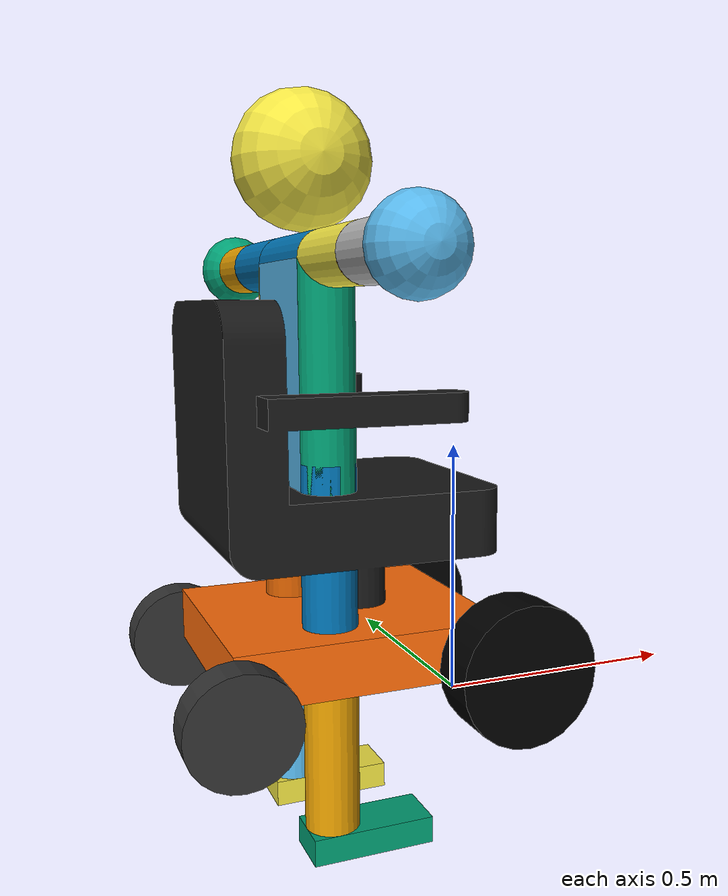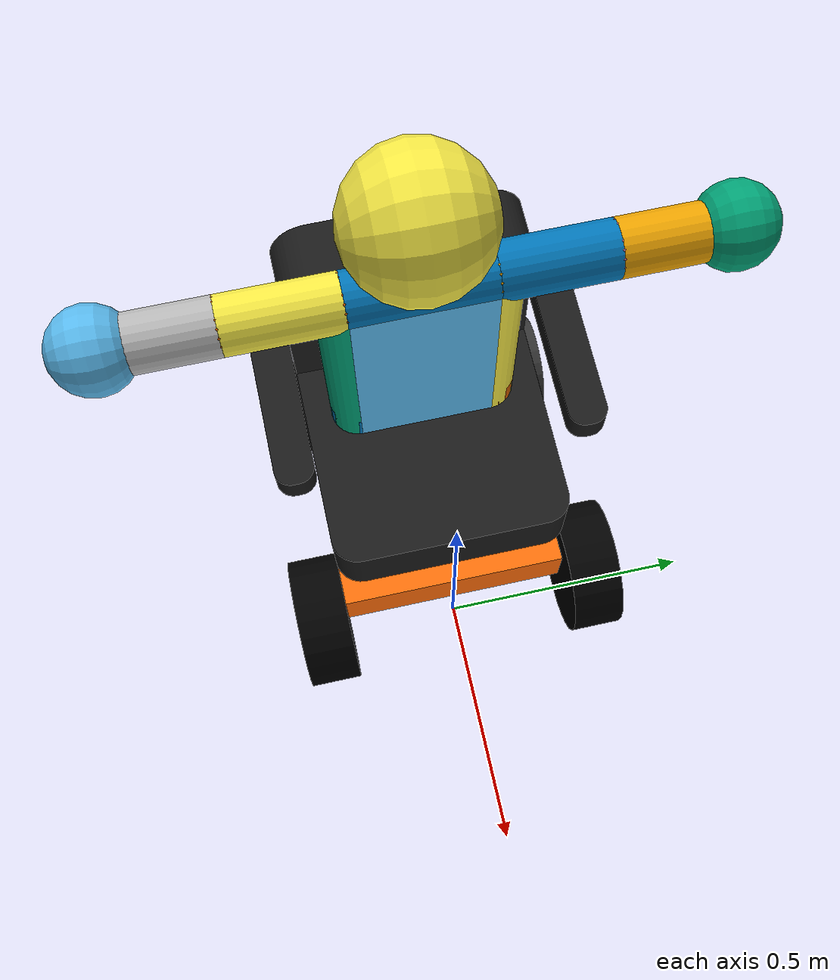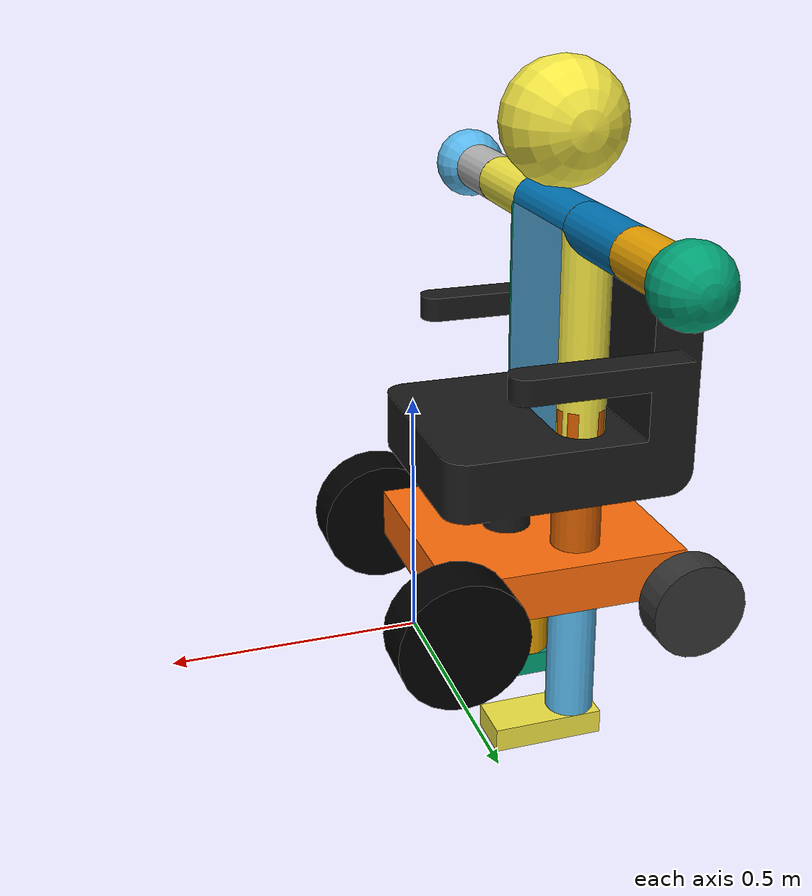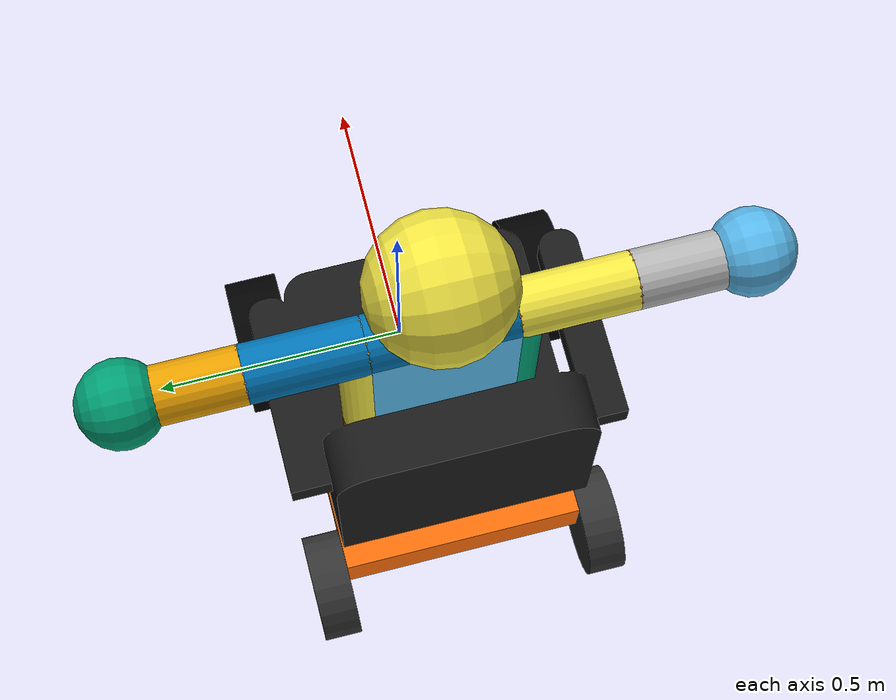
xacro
<?xml version="1.0"?>
<robot name="human_wc" xmlns:xacro="http://www.ros.org/wiki/xacro">

  <xacro:include filename="$(find model_human_skeleton)/urdf/simple_human.xacro"/>
  <xacro:include filename="$(find model_scwheelchair)/urdf/model_scwheelchair.xacro"/>

  <joint name="human_seat_joint" type="fixed">
    <origin xyz="-0.1 0 0.32" rpy="0 0 0"/>
    <parent link="seat_link"/>
    <child link="human_base_link"/>
  </joint>

  <link name="viewer_link"/>
  <joint name="head_viewer_joint" type="fixed">
    <origin xyz="0 ${head_radius} 0" rpy="1.57 0 1.57"/>
    <parent link="head_link"/>
    <child link="viewer_link"/>
  </joint>

  <!-- camera -->
  <gazebo reference="viewer_link">
    <sensor type="camera" name="camera1">
      <update_rate>30.0</update_rate>
      <camera name="head">
        <horizontal_fov>1.5707</horizontal_fov>
        <image>
          <width>960</width>
          <height>540</height>
          <format>R8G8B8</format>
        </image>
        <clip>
          <near>0.02</near>
          <far>300</far>
        </clip>
        <noise>
          <type>gaussian</type>
          <!-- Noise is sampled independently per pixel on each frame.
               That pixel's noise value is added to each of its color
               channels, which at that point lie in the range [0,1]. -->
          <mean>0.0</mean>
          <stddev>0.007</stddev>
        </noise>
      </camera>
      <plugin name="camera_controller" filename="libgazebo_ros_camera.so">
        <alwaysOn>true</alwaysOn>
        <updateRate>0.0</updateRate>
        <cameraName>firstpersonview</cameraName>
        <imageTopicName>image_raw</imageTopicName>
        <cameraInfoTopicName>camera_info</cameraInfoTopicName>
        <frameName>camera_link</frameName>
        <hackBaseline>0.07</hackBaseline>
        <distortionK1>0.0</distortionK1>
        <distortionK2>0.0</distortionK2>
        <distortionK3>0.0</distortionK3>
        <distortionT1>0.0</distortionT1>
        <distortionT2>0.0</distortionT2>
      </plugin>
    </sensor>
  </gazebo>

</robot>

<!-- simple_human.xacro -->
<robot name="human" xmlns:xacro="http://www.ros.org/wiki/xacro">

  <xacro:arg name="joint_pose_file"       default="default_pose.xacro"/>
  <xacro:property name="joint_pose_file"  value="$(arg joint_pose_file)"/>
  <xacro:include filename="$(find model_human_skeleton)/urdf/${joint_pose_file}"/>

  <xacro:arg name="fixed_joint"         default="true"/>
  <xacro:property name="fixed_joint"    value="$(arg fixed_joint)"/>

  <xacro:arg name="gazebo_static"       default="true"/>
  <xacro:property name="gazebo_static"  value="$(arg gazebo_static)"/>

  <xacro:property name="model_mass" value="10"/>
  <xacro:property name="head_radius" value="0.125"/>
  <xacro:property name="body_trunk_height" value="0.4" />
  <xacro:property name="body_trunk_width" value="0.25" />
  <xacro:property name="body_trunk_depth" value="0.1"/>

  <xacro:property name="thight_length" value="0.35"/>
  <xacro:property name="calf_length" value="0.35"/>
  <xacro:property name="leg_radius" value="0.05"/>

  <xacro:property name="foot_height" value="0.05"/>
  <xacro:property name="foot_length" value="0.23"/>

  <xacro:property name="hand_diameter" value="0.15"/>
  <xacro:property name="arm_diameter" value="0.1"/>
  <xacro:property name="arm_length" value="0.2"/>
  <xacro:property name="forearm_length" value="0.2"/>

  <xacro:property name="deg_to_rad" value="0.01745329251994329577"/>

  <xacro:macro name="unit_inertia" params="mass:=1">
    <inertial>
      <origin xyz="0 0 0" rpy="0 0 0"/>
      <mass value="${mass}"/>
      <inertia ixx="${mass}" ixy="0" ixz="0" iyy="${mass}" iyz="0" izz="${mass}"/>
    </inertial>
  </xacro:macro>

  <xacro:if value="${gazebo_static}">
    <gazebo>
      <static>true</static>
    </gazebo>
  </xacro:if>

  <link name="human_base_link"/>

  <link name="body_link">
    <visual>
      <geometry>
        <box size="${body_trunk_height} ${body_trunk_width} ${body_trunk_depth}"/>
      </geometry>
    </visual>
    <collision>
      <origin xyz="0 0 0"/>
      <geometry>
        <box size="${body_trunk_height} ${body_trunk_width} ${body_trunk_depth}"/>
      </geometry>
    </collision>
    <xacro:unit_inertia mass="1"/>
  </link>
  <joint name="base_body_joint" type="fixed">
    <origin xyz="-0 0 ${body_trunk_height/2.0}" rpy="0 -1.57 0"/>
    <child link="body_link"/>
    <parent link="human_base_link"/>
  </joint>

  <link name="bodyright_link">
    <visual>
      <geometry>
        <cylinder radius="${body_trunk_depth/2}" length="${body_trunk_height}"/>
      </geometry>
    </visual>
    <collision>
      <origin xyz="0 0 0"/>
      <geometry>
        <cylinder radius="${body_trunk_depth/2}" length="${body_trunk_height}"/>
      </geometry>
    </collision>
    <xacro:unit_inertia mass="1"/>
  </link>
  <joint name="body_bodyright_joint" type="fixed">
      <origin xyz="0 -${body_trunk_width/2} 0" rpy="0 -1.57 0"/>
    <child link="bodyright_link"/>
    <parent link="body_link"/>
  </joint>

  <link name="bodyleft_link">
    <visual>
      <geometry>
        <cylinder radius="${body_trunk_depth/2}" length="${body_trunk_height}"/>
      </geometry>
    </visual>
    <collision>
      <origin xyz="0 0 0"/>
      <geometry>
        <cylinder radius="${body_trunk_depth/2}" length="${body_trunk_height}"/>
      </geometry>
    </collision>
    <xacro:unit_inertia mass="1"/>
  </link>
  <joint name="body_bodyleft_joint" type="fixed">
      <origin xyz="0 ${body_trunk_width/2} 0" rpy="0 -1.57 0"/>
    <child link="bodyleft_link"/>
    <parent link="body_link"/>
  </joint>

  <!-- thight right -->
  <link name="legright1_link">
    <visual>
      <origin xyz="0 0 ${thight_length/2}"/>
      <geometry>
        <cylinder radius="${leg_radius}" length="${thight_length}"/>
      </geometry>
    </visual>
    <collision>
      <origin xyz="0 0 ${thight_length/2}"/>
      <geometry>
       <cylinder radius="${leg_radius}" length="${thight_length}"/>
      </geometry>
    </collision>
    <xacro:unit_inertia mass="1"/>
  </link>
  <xacro:unless value="${fixed_joint}">
    <joint name="hip_right_joint" type="revolute">
      <origin xyz="0 ${leg_radius-body_trunk_depth/2} ${body_trunk_height/2-leg_radius}" rpy="0 ${hip_r_joint_angle} 0"/>
      <child link="legright1_link"/>
      <parent link="bodyright_link"/>
      <axis xyz="0.0 1.0 0.0"/>
      <limit lower="-1.57" upper="1.57" effort="1000.0" velocity="0.5"/>
    </joint>
  </xacro:unless>
  <xacro:if value="${fixed_joint}">
    <joint name="hip_right_joint" type="fixed">
      <origin xyz="0 ${leg_radius-body_trunk_depth/2} ${body_trunk_height/2-leg_radius}" rpy="0 ${hip_r_joint_angle} 0"/>
      <child link="legright1_link"/>
      <parent link="bodyright_link"/>
    </joint>
  </xacro:if>

  <!-- thight left -->
  <link name="legleft1_link">
    <visual>
      <origin xyz="0 0 ${thight_length/2}"/>
      <geometry>
        <cylinder radius="${leg_radius}" length="${thight_length}"/>
      </geometry>
    </visual>
    <collision>
      <origin xyz="0 0 ${thight_length/2}"/>
      <geometry>
       <cylinder radius="${leg_radius}" length="${thight_length}"/>
      </geometry>
    </collision>
    <xacro:unit_inertia mass="1"/>
  </link>
  <xacro:unless value="${fixed_joint}">
    <joint name="hip_left_joint" type="revolute">
      <origin xyz="0 ${-(leg_radius-body_trunk_depth/2)} ${body_trunk_height/2-leg_radius}" rpy="0 ${hip_l_joint_angle} 0"/>
      <child link="legleft1_link"/>
      <parent link="bodyleft_link"/>
      <axis xyz="0.0 1.0 0.0"/>
      <limit lower="-1.57" upper="1.57" effort="1000.0" velocity="0.5"/>
    </joint>
  </xacro:unless>
  <xacro:if value="${fixed_joint}">
    <joint name="hip_left_joint" type="fixed">
      <origin xyz="0 ${-(leg_radius-body_trunk_depth/2)} ${body_trunk_height/2-leg_radius}" rpy="0 ${hip_l_joint_angle} 0"/>
      <child link="legleft1_link"/>
      <parent link="bodyleft_link"/>
    </joint>
  </xacro:if>

  <!-- knee right -->
  <link name="legright2_link">
    <visual>
      <geometry>
        <sphere radius="${leg_radius}"/>
      </geometry>
    </visual>
    <collision>
      <geometry>
        <sphere radius="${leg_radius}"/>
      </geometry>
    </collision>
    <xacro:unit_inertia mass="1"/>
  </link>
  <xacro:unless value="${fixed_joint}">
    <joint name="knee_right_joint" type="revolute">
      <origin xyz="0 0 ${thight_length}" rpy="0 ${knee_r_joint_angle-1.57} 0"/>
      <child link="legright2_link"/>
      <parent link="legright1_link"/>
      <axis xyz="0.0 1.0 0.0"/>
      <limit lower="0" upper="${160 * deg_to_rad}" effort="1000.0" velocity="0.5"/>
    </joint>
  </xacro:unless>
  <xacro:if value="${fixed_joint}">
    <joint name="knee_right_joint" type="fixed">
      <origin xyz="0 0 ${thight_length}" rpy="0 ${knee_r_joint_angle-1.57} 0"/>
      <child link="legright2_link"/>
      <parent link="legright1_link"/>
    </joint>
  </xacro:if>

  <!-- knee left -->
  <link name="legleft2_link">
    <visual>
      <geometry>
        <sphere radius="${leg_radius}"/>
      </geometry>
    </visual>
    <collision>
      <geometry>
        <sphere radius="${leg_radius}"/>
      </geometry>
    </collision>
    <xacro:unit_inertia mass="1"/>
  </link>
  <xacro:unless value="${fixed_joint}">
    <joint name="knee_left_joint" type="revolute">
      <origin xyz="0 0 ${thight_length}" rpy="0 ${knee_l_joint_angle-1.57} 0"/>
      <child link="legleft2_link"/>
      <parent link="legleft1_link"/>
      <axis xyz="0.0 1.0 0.0"/>
      <limit lower="0" upper="${160 * deg_to_rad}" effort="1000.0" velocity="0.5"/>
    </joint>
  </xacro:unless>
  <xacro:if value="${fixed_joint}">
    <joint name="knee_left_joint" type="fixed">
      <origin xyz="0 0 ${thight_length}" rpy="0 ${knee_l_joint_angle-1.57} 0"/>
      <child link="legleft2_link"/>
      <parent link="legleft1_link"/>
    </joint>
  </xacro:if>

  <!-- calf right -->
  <link name="legright3_link">
    <visual>
      <geometry>
        <cylinder radius="${leg_radius}" length="${calf_length}"/>
      </geometry>
    </visual>
    <collision>
      <origin xyz="0 0 0"/>
      <geometry>
        <cylinder radius="${leg_radius}" length="${calf_length}"/>
      </geometry>
    </collision>
    <xacro:unit_inertia mass="1"/>
  </link>
  <joint name="calf_right_joint" type="fixed">
    <origin xyz="${calf_length/2} 0 0" rpy="0 -1.57 0"/>
    <child link="legright3_link"/>
    <parent link="legright2_link"/>
  </joint>

  <!-- calf left -->
  <link name="legleft3_link">
    <visual>
      <geometry>
        <cylinder radius="${leg_radius}" length="${calf_length}"/>
      </geometry>
    </visual>
    <collision>
      <origin xyz="0 0 0"/>
      <geometry>
        <cylinder radius="${leg_radius}" length="${calf_length}"/>
      </geometry>
    </collision>
    <xacro:unit_inertia mass="1"/>
  </link>
  <joint name="calf_left_joint" type="fixed">
    <origin xyz="${calf_length/2} 0 0" rpy="0 -1.57 0"/>
    <child link="legleft3_link"/>
    <parent link="legleft2_link"/>
  </joint>

  <!-- foot right -->
  <link name="footright_link">
    <visual>
      <origin xyz="${foot_length/2-leg_radius} 0 0"/>
      <geometry>
        <box size="${foot_length} ${2*leg_radius} ${foot_height}"/>
      </geometry>
    </visual>
    <collision>
      <origin xyz="${foot_length/2-leg_radius} 0 0"/>
      <geometry>
        <box size="${foot_length} ${2*leg_radius} ${foot_height}"/>
      </geometry>
    </collision>
    <xacro:unit_inertia mass="1"/>
  </link>
  <joint name="ankle_right_joint" type="fixed">
    <origin xyz="0 0 -${calf_length*0.5}" rpy="0 0 0"/>
    <child link="footright_link"/>
    <parent link="legright3_link"/>
  </joint>

  <!-- foot left -->
  <link name="footleft_link">
    <visual>
      <origin xyz="${foot_length/2-leg_radius} 0 0"/>
      <geometry>
        <box size="${foot_length} ${2*leg_radius} ${foot_height}"/>
      </geometry>
    </visual>
    <collision>
      <origin xyz="${foot_length/2-leg_radius} 0 0"/>
      <geometry>
        <box size="${foot_length} ${2*leg_radius} ${foot_height}"/>
      </geometry>
    </collision>
    <xacro:unit_inertia mass="1"/>
  </link>
  <joint name="ankle_left_joint" type="fixed">
    <origin xyz="0 0 -${calf_length*0.5}" rpy="0 0 0"/>
    <child link="footleft_link"/>
    <parent link="legleft3_link"/>
  </joint>

  <!-- chest -->
  <link name="chest_link">
    <visual>
      <geometry>
        <cylinder radius="${body_trunk_depth/2}" length="${body_trunk_width}"/>
      </geometry>
    </visual>
    <collision>
      <geometry>
        <cylinder radius="${body_trunk_depth/2}" length="${body_trunk_width}"/>
      </geometry>
    </collision>
    <xacro:unit_inertia mass="1"/>
  </link>
  <joint name="body_chest_joint" type="fixed">
    <origin xyz="${body_trunk_height/2} 0 0" rpy="-1.57 0 0"/>
    <child link="chest_link"/>
    <parent link="body_link"/>
  </joint>

  <!-- shoulder right -->
  <link name="shoulderright_link">
    <visual>
      <geometry>
        <sphere radius="${arm_diameter/2}"/>
      </geometry>
    </visual>
    <collision>
      <geometry>
        <sphere radius="${arm_diameter/2}"/>
      </geometry>
    </collision>
    <xacro:unit_inertia mass="1"/>
  </link>
  <xacro:unless value="${fixed_joint}">
    <joint name="shoulder_right_flexion_joint" type="revolute">
      <origin xyz="0 0 ${-body_trunk_width/2}" rpy="${shoulder_r_flexion_angle} 0 0"/>
      <child link="shoulderright_link"/>
      <parent link="chest_link"/>
      <axis xyz="1 0 0"/>
      <limit lower="${-90 * deg_to_rad}" upper="${135 * deg_to_rad}" effort="1000.0" velocity="0.5"/>
    </joint>
  </xacro:unless>
  <xacro:if value="${fixed_joint}">
    <joint name="shoulder_right_flexion_joint" type="fixed">
      <origin xyz="0 0 ${-body_trunk_width/2}" rpy="${shoulder_r_flexion_angle} 0 0"/>
      <child link="shoulderright_link"/>
      <parent link="chest_link"/>
    </joint>
  </xacro:if>

  <link name="shoulderright_link2">
    <xacro:unit_inertia mass="1"/>
  </link>
  <xacro:unless value="${fixed_joint}">
    <joint name="shoulder_right_abduction_joint" type="revolute">
      <origin xyz="0 0 0" rpy="0 ${shoulder_r_abduction_angle} 0"/>
      <child link="shoulderright_link2"/>
      <parent link="shoulderright_link"/>
      <axis xyz="0 1 0"/>
      <limit lower="${-90 * deg_to_rad}" upper="${90 * deg_to_rad}" effort="1000.0" velocity="0.5"/>
    </joint>
  </xacro:unless>
  <xacro:if value="${fixed_joint}">
    <joint name="shoulder_right_abduction_joint" type="fixed">
      <origin xyz="0 0 0" rpy="0 ${shoulder_r_abduction_angle} 0"/>
      <child link="shoulderright_link2"/>
      <parent link="shoulderright_link"/>
    </joint>
  </xacro:if>

  <link name="shoulderright_link3">
    <xacro:unit_inertia mass="1"/>
  </link>
  <xacro:unless value="${fixed_joint}">
    <joint name="shoulder_right_rotation_joint" type="revolute">
      <origin xyz="0 0 0" rpy="0 0 ${shoulder_r_rotation_angle}"/>
      <child link="shoulderright_link3"/>
      <parent link="shoulderright_link2"/>
      <axis xyz="0 0 1"/>
      <limit lower="${-180 * deg_to_rad}" upper="${90 * deg_to_rad}" effort="1000.0" velocity="0.5"/>
    </joint>
  </xacro:unless>
  <xacro:if value="${fixed_joint}">
    <joint name="shoulder_right_rotation_joint" type="fixed">
      <origin xyz="0 0 0" rpy="0 0 ${shoulder_r_rotation_angle}"/>
      <child link="shoulderright_link3"/>
      <parent link="shoulderright_link2"/>
    </joint>
  </xacro:if>

  <!-- shoulder left -->
  <link name="shoulderleft_link">
    <visual>
      <geometry>
        <sphere radius="${arm_diameter/2}"/>
      </geometry>
    </visual>
    <collision>
      <geometry>
        <sphere radius="${arm_diameter/2}"/>
      </geometry>
    </collision>
    <xacro:unit_inertia mass="1"/>
  </link>
  <xacro:unless value="${fixed_joint}">
    <joint name="shoulder_left_flexion_joint" type="revolute">
      <origin xyz="0 0 ${body_trunk_width/2}" rpy="${shoulder_l_flexion_angle} 0 ${180*deg_to_rad}"/>
      <child link="shoulderleft_link"/>
      <parent link="chest_link"/>
      <axis xyz="1 0 0"/>
      <limit lower="${-90 * deg_to_rad}" upper="${135 * deg_to_rad}" effort="1000.0" velocity="0.5"/>
    </joint>
  </xacro:unless>
  <xacro:if value="${fixed_joint}">
    <joint name="shoulder_left_flexion_joint" type="fixed">
      <origin xyz="0 0 ${body_trunk_width/2}" rpy="${shoulder_l_flexion_angle} 0 ${180*deg_to_rad}"/>
      <child link="shoulderleft_link"/>
      <parent link="chest_link"/>
    </joint>
  </xacro:if>

  <link name="shoulderleft_link2">
    <xacro:unit_inertia mass="1"/>
  </link>
  <xacro:unless value="${fixed_joint}">
    <joint name="shoulder_left_abduction_joint" type="revolute">
      <origin xyz="0 0 0" rpy="0 ${shoulder_l_abduction_angle} 0"/>
      <child link="shoulderleft_link2"/>
      <parent link="shoulderleft_link"/>
      <axis xyz="0 1 0"/>
      <limit lower="${-90 * deg_to_rad}" upper="${90 * deg_to_rad}" effort="1000.0" velocity="0.5"/>
    </joint>
  </xacro:unless>
  <xacro:if value="${fixed_joint}">
    <joint name="shoulder_left_abduction_joint" type="fixed">
      <origin xyz="0 0 0" rpy="0 ${shoulder_l_abduction_angle} 0"/>
      <child link="shoulderleft_link2"/>
      <parent link="shoulderleft_link"/>
    </joint>
  </xacro:if>

  <link name="shoulderleft_link3">
    <xacro:unit_inertia mass="1"/>
  </link>
  <xacro:unless value="${fixed_joint}">
    <joint name="shoulder_left_rotation_joint" type="revolute">
      <origin xyz="0 0 0" rpy="0 0 ${shoulder_l_rotation_angle}"/>
      <child link="shoulderleft_link3"/>
      <parent link="shoulderleft_link2"/>
      <axis xyz="0 0 1"/>
      <limit lower="${-180 * deg_to_rad}" upper="${90 * deg_to_rad}" effort="1000.0" velocity="0.5"/>
    </joint>
  </xacro:unless>
  <xacro:if value="${fixed_joint}">
    <joint name="shoulder_left_rotation_joint" type="fixed">
      <origin xyz="0 0 0" rpy="0 0 ${shoulder_l_rotation_angle}"/>
      <child link="shoulderleft_link3"/>
      <parent link="shoulderleft_link2"/>
    </joint>
  </xacro:if>

  <!-- arm right -->
  <link name="armright1_link">
    <visual>
      <origin xyz="0 0 ${-arm_length/2}"/>
      <geometry>
        <cylinder radius="${arm_diameter/2}" length="${arm_length}"/>
      </geometry>
    </visual>
    <collision>
      <origin xyz="0 0 ${-arm_length/2}"/>
      <geometry>
        <cylinder radius="${arm_diameter/2}" length="${arm_length}"/>
      </geometry>
    </collision>
    <xacro:unit_inertia mass="1"/>
  </link>
  <joint name="arm_right_joint" type="fixed">
    <origin xyz="0 0 0" rpy="0 0 0"/>
    <child link="armright1_link"/>
    <parent link="shoulderright_link3"/>
  </joint>

  <!-- arm left -->
  <link name="armleft1_link">
    <visual>
      <origin xyz="0 0 ${-arm_length/2}"/>
      <geometry>
        <cylinder radius="${arm_diameter/2}" length="${arm_length}"/>
      </geometry>
    </visual>
    <collision>
      <origin xyz="0 0 ${-arm_length/2}"/>
      <geometry>
        <cylinder radius="${arm_diameter/2}" length="${arm_length}"/>
      </geometry>
    </collision>
    <xacro:unit_inertia mass="1"/>
  </link>
  <joint name="arm_left_joint" type="fixed">
    <origin xyz="0 0 0" rpy="0 ${180*deg_to_rad} ${180*deg_to_rad}"/>
    <child link="armleft1_link"/>
    <parent link="shoulderleft_link3"/>
  </joint>

  <!-- elbow right -->
  <link name="armright2_link">
    <visual>
      <geometry>
        <sphere radius="${arm_diameter/2}"/>
      </geometry>
    </visual>
    <collision>
      <geometry>
        <sphere radius="${arm_diameter/2}"/>
      </geometry>
    </collision>
    <xacro:unit_inertia mass="1"/>
  </link>
  <xacro:unless value="${fixed_joint}">
    <joint name="elbow_right_joint" type="revolute">
      <origin xyz="0 0 ${-arm_length}" rpy="${elbow_r_angle} 0 0"/>
      <child link="armright2_link"/>
      <parent link="armright1_link"/>
      <axis xyz="1 0 0"/>
      <limit lower="0" upper="${160 * deg_to_rad}" effort="1000.0" velocity="0.5"/>
    </joint>
  </xacro:unless>
  <xacro:if value="${fixed_joint}">
    <joint name="elbow_right_joint" type="fixed">
      <origin xyz="0 0 ${-arm_length}" rpy="${elbow_r_angle} 0 0"/>
      <child link="armright2_link"/>
      <parent link="armright1_link"/>
    </joint>
  </xacro:if>

  <!-- elbow left -->
  <link name="armleft2_link">
    <visual>
      <geometry>
        <sphere radius="${arm_diameter/2}"/>
      </geometry>
    </visual>
    <collision>
      <geometry>
        <sphere radius="${arm_diameter/2}"/>
      </geometry>
    </collision>
    <xacro:unit_inertia mass="1"/>
  </link>
  <xacro:unless value="${fixed_joint}">
    <joint name="elbow_left_joint" type="revolute">
      <origin xyz="0 0 ${-arm_length}" rpy="${elbow_l_angle} 0 0"/>
      <child link="armleft2_link"/>
      <parent link="armleft1_link"/>
      <axis xyz="1 0 0"/>
      <limit lower="0" upper="${160 * deg_to_rad}" effort="1000.0" velocity="0.5"/>
    </joint>
  </xacro:unless>
  <xacro:if value="${fixed_joint}">
    <joint name="elbow_left_joint" type="fixed">
      <origin xyz="0 0 ${-arm_length}" rpy="${elbow_l_angle} 0 0"/>
      <child link="armleft2_link"/>
      <parent link="armleft1_link"/>
    </joint>
  </xacro:if>

  <!-- forearm right -->
  <link name="armright3_link">
    <visual>
      <geometry>
        <cylinder radius="${arm_diameter/2}" length="${forearm_length}"/>
      </geometry>
    </visual>
    <collision>
      <geometry>
        <cylinder radius="${arm_diameter/2}" length="${forearm_length}"/>
      </geometry>
    </collision>
    <xacro:unit_inertia mass="1"/>
  </link>
  <joint name="forearm_right_joint" type="fixed">
    <origin xyz="0 0 ${-forearm_length/2}" rpy="0 0 0"/>
    <child link="armright3_link"/>
    <parent link="armright2_link"/>
  </joint>

  <!-- forearm left -->
  <link name="armleft3_link">
    <visual>
      <geometry>
        <cylinder radius="${arm_diameter/2}" length="${forearm_length}"/>
      </geometry>
    </visual>
    <collision>
      <geometry>
        <cylinder radius="${arm_diameter/2}" length="${forearm_length}"/>
      </geometry>
    </collision>
    <xacro:unit_inertia mass="1"/>
  </link>
  <joint name="forearm_left_joint" type="fixed">
    <origin xyz="0 0 ${-forearm_length/2}" rpy="0 0 0"/>
    <child link="armleft3_link"/>
    <parent link="armleft2_link"/>
  </joint>

  <!-- hand right -->
  <link name="handright_link">
    <visual>
      <geometry>
        <sphere radius="${hand_diameter/2}"/>
      </geometry>
    </visual>
    <collision>
      <geometry>
        <sphere radius="${hand_diameter/2}"/>
      </geometry>
    </collision>
    <xacro:unit_inertia mass="1"/>
  </link>
  <joint name="wrist_right_joint" type="fixed">
      <origin xyz="0 0 ${-forearm_length/2}" rpy="0 0 0"/>
    <child link="handright_link"/>
    <parent link="armright3_link"/>
  </joint>

  <!-- hand left -->
  <link name="handleft_link">
    <visual>
      <geometry>
        <sphere radius="${hand_diameter/2}"/>
      </geometry>
    </visual>
    <collision>
      <geometry>
        <sphere radius="${hand_diameter/2}"/>
      </geometry>
    </collision>
    <xacro:unit_inertia mass="1"/>
  </link>
  <joint name="wrist_left_joint" type="fixed">
      <origin xyz="0 0 ${-forearm_length/2}" rpy="0 0 0"/>
    <child link="handleft_link"/>
    <parent link="armleft3_link"/>
  </joint>

  <!-- head -->
  <link name="head_link">
    <visual>
      <geometry>
        <sphere radius="${head_radius}"/>
      </geometry>
    </visual>
    <collision>
      <origin xyz="0 0 0"/>
      <geometry>
        <sphere radius="${head_radius}"/>
      </geometry>
    </collision>
    <xacro:unit_inertia mass="1"/>
  </link>
  <xacro:unless value="${fixed_joint}">
    <joint name="chest_head_joint" type="revolute">
      <origin xyz="${head_radius+body_trunk_depth/2} 0 0" rpy="0 0 0"/>
      <child link="head_link"/>
      <parent link="chest_link"/>
      <axis xyz="1 0 0"/>
      <limit lower="${-90 * deg_to_rad}" upper="${90 * deg_to_rad}" effort="1000.0" velocity="0.5"/>
    </joint>
  </xacro:unless>
  <xacro:if value="${fixed_joint}">
    <joint name="chest_head_joint" type="fixed">
      <origin xyz="${head_radius+body_trunk_depth/2} 0 0" rpy="0 0 0"/>
      <child link="head_link"/>
      <parent link="chest_link"/>
    </joint>
  </xacro:if>

</robot>

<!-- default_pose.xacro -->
<robot xmlns:xacro="https://www.ros.org/wiki/xacro">

	<xacro:property name="hip_r_joint_angle" value="0"/>
    <xacro:property name="hip_l_joint_angle" value="0"/>

    <xacro:property name="knee_r_joint_angle" value="0"/>
    <xacro:property name="knee_l_joint_angle" value="0"/>

    <xacro:property name="shoulder_r_flexion_angle" value="0"/>
    <xacro:property name="shoulder_l_flexion_angle" value="0"/>

    <xacro:property name="shoulder_r_abduction_angle" value="0"/>
    <xacro:property name="shoulder_l_abduction_angle" value="0"/>

    <xacro:property name="shoulder_r_rotation_angle" value="0"/>
    <xacro:property name="shoulder_l_rotation_angle" value="0"/>

    <xacro:property name="elbow_r_angle" value="0"/>
    <xacro:property name="elbow_l_angle" value="0"/>

</robot>

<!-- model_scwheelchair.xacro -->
<robot name="model_scwheelchair" xmlns:xacro="https://www.ros.org/wiki/xacro">

   <xacro:include filename="$(find model_scwheelchair)/urdf/base_model_scwheelchair/model_scwheelchair_.xacro"/>
   <xacro:include filename="$(find sensors)/sensor_macro.xacro"/>

</robot>

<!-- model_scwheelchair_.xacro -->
<robot name="model_scwheelchair" xmlns:xacro="https://www.ros.org/wiki/xacro" >

    <xacro:include filename="$(find model_scwheelchair)/urdf/base_model_scwheelchair/materials_.xacro" />
    <xacro:include filename="$(find model_scwheelchair)/urdf/base_model_scwheelchair/macros_.xacro" />
    <xacro:include filename="$(find model_scwheelchair)/urdf/base_model_scwheelchair/model_properties_.xacro" />
    <xacro:include filename="$(find model_scwheelchair)/urdf/base_model_scwheelchair/model_scwheelchair_.gazebo" />

    <link name="base_footprint"/>
    <joint type="fixed" name="base_joint">
      <origin xyz="-${baseLength/2} 0 ${wheelRadius}"  rpy="0 0 0"/>
      <parent link="base_footprint"/>
      <child link="base_link"/>
    </joint>

    <link name="base_link">
        <visual>
            <origin xyz="0 0 ${baseHeight/4}" rpy="0 0 0"/>
            <geometry>
                <box size="${baseLength} ${baseWidth} ${baseHeight}"/>
            </geometry>
            <material name="orange"/>
        </visual>

        <collision>
            <origin xyz="0 0 ${baseHeight/4}" rpy="0 0 0"/>
            <geometry>
                <box size="${baseLength} ${baseWidth} ${baseHeight}"/>
            </geometry>
        </collision>

        <inertial>
            <origin xyz="0 0 ${baseHeight/2}" rpy="0 0 0"/>
            <mass value="${baseMass}"/>
            <xacro:box_inertia m="${baseMass}" x="${baseLength}" y="${baseWidth}" z="${baseHeight}"/>
        </inertial>
    </link>

    <link name="seat_link">
        <visual>
            <origin xyz="0 0 0" rpy="0 0 0"/>
            <geometry>
                <mesh filename="package://model_scwheelchair/meshes/scat_seat.stl"  scale="0.01 0.01 0.01"/>
            </geometry>
            <material name="light_black"/>
        </visual>

        <collision>
            <origin xyz="0 0 0" rpy="0 0 0"/>
            <geometry>
                <mesh filename="package://model_scwheelchair/meshes/scat_seat.stl"  scale="0.01 0.01 0.01"/>
            </geometry>
        </collision>

        <inertial>
            <origin xyz="0 0 ${seatHeight/2}" rpy="0 0 0"/>
            <mass value="${seatMass}"/>
            <xacro:box_inertia m="${seatMass}" x="${baseLength}" y="${baseWidth}" z="${seatHeight}"/>
        </inertial>
    </link>

    <joint name="seat_joint"  type="fixed">
        <origin xyz="0.05 0 0" rpy="0 0 0"/>
        <parent link="base_link"/>
        <child link="seat_link"/>
    </joint>

    <link name="caster_wheel_left">
        <visual>
            <origin xyz="0 0 0" rpy="0 1.5707 1.5707"/>
            <geometry>
                <cylinder length="${casterWidth}" radius="${casterRadius}"/>
            </geometry>
            <material name="grey"/>
        </visual>

        <collision>
            <origin xyz="0 0 0" rpy="0 0 0"/>
            <geometry>
                <sphere radius="${casterRadius}"/>
            </geometry>
        </collision>

        <inertial>
            <origin xyz="0 0 0" rpy="0 0 0"/>
            <mass value="${casterMass}"/>
            <xacro:sphere_inertia m="${casterMass}" r="${casterRadius}"/>
        </inertial>
    </link>

    <joint name="caster_left_joint"  type="fixed">
        <origin xyz="${-baseLength/2} ${baseWidth/2+casterWidth/2} ${-(wheelRadius-casterRadius)}" rpy="0 0 0"/>
        <parent link="base_link"/>
        <child link="caster_wheel_left"/>
    </joint>

    <link name="caster_wheel_right">
        <visual>
            <origin xyz="0 0 0" rpy="0 1.5707 1.5707"/>
            <geometry>
                <cylinder length="${casterWidth}" radius="${casterRadius}"/>
            </geometry>
            <material name="grey"/>
        </visual>

        <collision>
            <origin xyz="0 0 0" rpy="0 0 0"/>
            <geometry>
                <sphere radius="${casterRadius}"/>
            </geometry>
        </collision>

        <inertial>
            <origin xyz="0 0 0" rpy="0 0 0"/>
            <mass value="${casterMass}"/>
            <xacro:sphere_inertia m="${casterMass}" r="${casterRadius}"/>
        </inertial>
    </link>

    <joint name="caster_right_joint"  type="fixed">
        <origin xyz="${-baseLength/2} ${-(baseWidth/2+casterWidth/2)} ${-(wheelRadius-casterRadius)}" rpy="0 0 0"/>
        <parent link="base_link"/>
        <child link="caster_wheel_right"/>
    </joint>

    <link name="wheel_left">
        <visual>
            <origin xyz="0 0 0" rpy="0 1.5707 1.5707"/>
            <geometry>
                <cylinder length="${wheelWidth}" radius="${wheelRadius}"/>
            </geometry>
            <material name="black"/>
        </visual>

        <collision>
            <origin xyz="0 0 0" rpy="0 1.5707 1.5707"/>
            <geometry>
                <cylinder length="${wheelWidth}" radius="${wheelRadius}"/>
            </geometry>
        </collision>

        <inertial>
            <origin xyz="0 0 0" rpy="0 1.5707 1.5707"/>
            <mass value="${wheelMass}"/>
            <xacro:cylinder_inertia m="${wheelMass}" r="${wheelRadius}" h="${wheelWidth}"/>
        </inertial>
    </link>

    <joint name="wheel_left_joint" type="continuous">
        <origin xyz="0 ${baseWidth/2+wheelWidth/2} ${wheelRadius}"  rpy="0 0 0"/>
        <parent link="base_footprint"/>
        <child link="wheel_left"/>
        <axis xyz="0 1 0" rpy="0 0 0"/>
        <limit effort="1000" velocity="1000" />
        <dynamics damping="0.0" friction="0.05" />
        <joint_properties damping="0.0" friction="0.0"/>
    </joint>

    <link name="wheel_right">
        <visual>
            <origin xyz="0 0 0" rpy="0 1.5707 1.5707"/>
            <geometry>
                <cylinder length="${wheelWidth}" radius="${wheelRadius}"/>
            </geometry>
            <material name="black"/>
        </visual>

        <collision>
            <origin xyz="0 0 0" rpy="0 1.5707 1.5707"/>
            <geometry>
                <cylinder length="${wheelWidth}" radius="${wheelRadius}"/>
            </geometry>
        </collision>

        <inertial>
            <origin xyz="0 0 0" rpy="0 1.5707 1.5707"/>
            <mass value="${wheelMass}"/>
            <xacro:cylinder_inertia m="${wheelMass}" r="${wheelRadius}" h="${wheelWidth}"/>
        </inertial>
    </link>

    <joint name="wheel_right_joint" type="continuous">
        <origin xyz="0 ${-(baseWidth/2+wheelWidth/2)} ${wheelRadius}"  rpy="0 0 0"/>
        <parent link="base_footprint"/>
        <child link="wheel_right"/>
        <axis xyz="0 1 0" rpy="0 0 0"/>
        <limit effort="1000" velocity="1000" />
        <dynamics damping="0.0" friction="0.05" />
        <joint_properties damping="0.0" friction="0.0"/>
    </joint>

</robot>

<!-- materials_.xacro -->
<robot xmlns:xacro="https://www.ros.org/wiki/xacro">

  <material name="black">
    <color rgba="0.0 0.0 0.0 1.0"/>
  </material>

  <material name="light_black">
    <color rgba="0.1 0.1 0.1 1.0"/>
  </material>

  <material name="blue">
    <color rgba="0.0 0.0 0.8 1.0"/>
  </material>

  <material name="green">
    <color rgba="0.0 0.8 0.0 1.0"/>
  </material>

  <material name="grey">
    <color rgba="0.2 0.2 0.2 1.0"/>
  </material>

  <material name="orange">
    <color rgba="${255/255} ${108/255} ${10/255} 1.0"/>
  </material>

  <material name="brown">
    <color rgba="${222/255} ${207/255} ${195/255} 1.0"/>
  </material>

  <material name="red">
    <color rgba="0.8 0.0 0.0 1.0"/>
  </material>

  <material name="white">
    <color rgba="1.0 1.0 1.0 1.0"/>
  </material>

</robot>

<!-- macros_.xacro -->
<robot xmlns:xacro="https://www.ros.org/wiki/xacro">

  <xacro:macro name="cylinder_inertia" params="m r h">
    <inertia  ixx="${m*(3*r*r+h*h)/12}" ixy = "0" ixz = "0"
      iyy="${m*(3*r*r+h*h)/12}" iyz = "0"
      izz="${m*r*r/2}"
    />
  </xacro:macro>

  <xacro:macro name="box_inertia" params="m x y z">
    <inertia  ixx="${m*(y*y+z*z)/12}" ixy = "0" ixz = "0"
              iyy="${m*(x*x+z*z)/12}" iyz = "0"
              izz="${m*(x*x+z*z)/12}"
    />
  </xacro:macro>

  <xacro:macro name="sphere_inertia" params="m r">
    <inertia  ixx="${2*m*r*r/5}" ixy = "0" ixz = "0"
              iyy="${2*m*r*r/5}" iyz = "0"
              izz="${2*m*r*r/5}"
    />
  </xacro:macro>

</robot>

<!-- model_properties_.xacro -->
<robot xmlns:xacro="https://www.ros.org/wiki/xacro">

	<!-- Constants -->
	<xacro:property name="PI" value="3.1415926535897931"/>

	<!-- base_link properties -->
	<xacro:property name="baseHeight" value="0.1"/>
	<xacro:property name="baseLength" value="0.5"/>
	<xacro:property name="baseWidth" value="0.45"/>
	<xacro:property name="baseMass" value="1.0"/>

	<!-- seat_link properties -->
	<xacro:property name="seatHeight" value="0.7"/>
	<xacro:property name="seatMass" value="1.0"/>

	<!-- Caster wheel properties -->
	<xacro:property name="casterWidth" value="0.07"/>
	<xacro:property name="casterRadius" value="0.1"/>
	<xacro:property name="casterMass" value="0.5"/>

	<!-- Differential-drive wheels properties -->
	<xacro:property name="wheelWidth" value="0.1"/>
    <xacro:property name="wheelRadius" value="0.13"/>
	<xacro:property name="wheelMass" value="1.0"/>

</robot>
